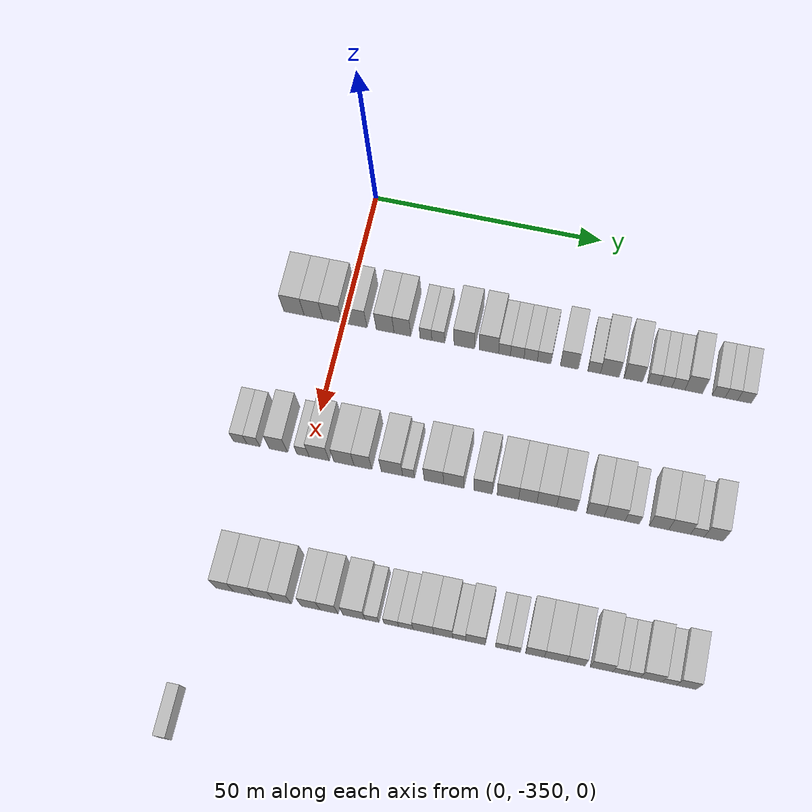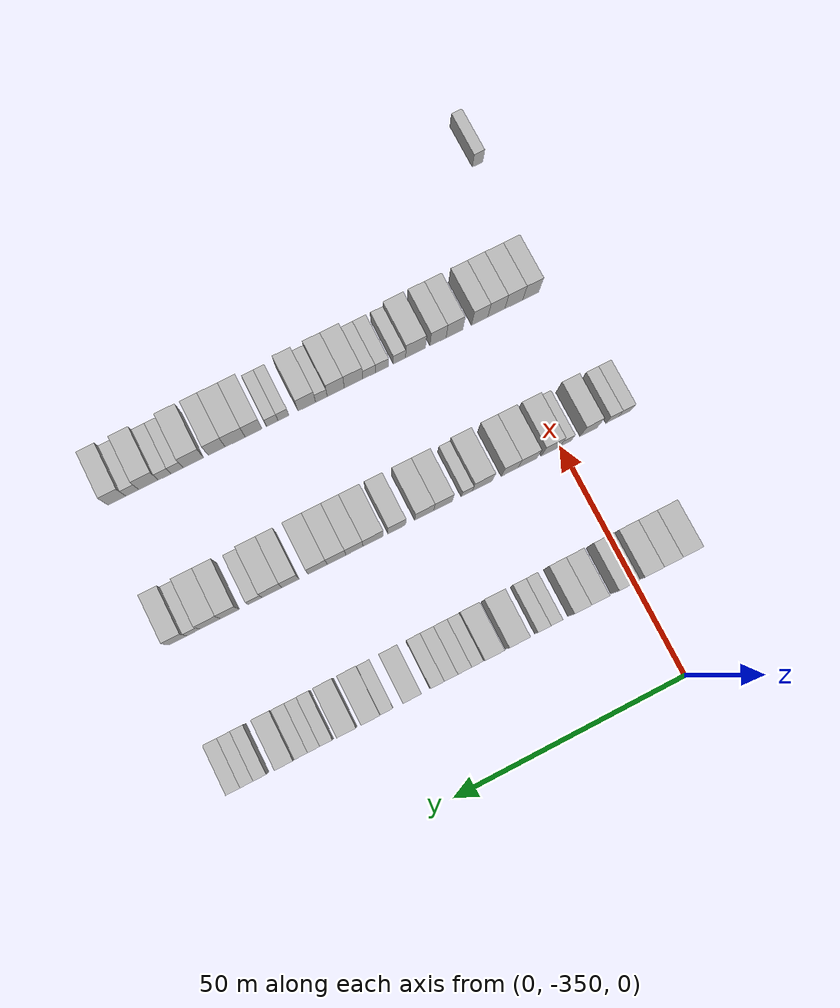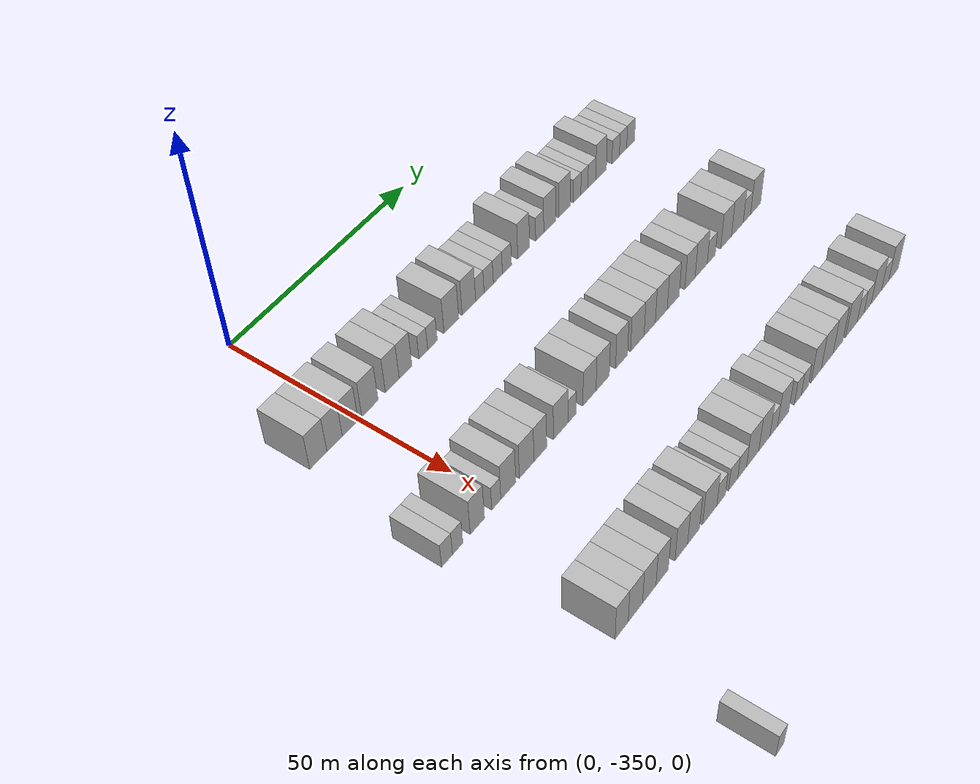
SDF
<sdf version="1.6">
 <world name="default">
  <model name="building_28">
   <static>1</static>
   <pose>25.0000 -360.7338 0 0.000000 0.000000 0.000000</pose>
   <link name="link">
    <pose>0 0 4.50 0 0 0</pose>
    <collision name="collision"><geometry><box><size>10.0000 4.4301 9.0000</size></box></geometry></collision>
    <visual name="visual">
     <cast_shadows>0</cast_shadows>
     <geometry><box><size>10.0000 4.4301 9.0000</size></box></geometry>
     <material>
      <script>
       <uri>model://HANNAS_wall/materials/scripts</uri>
       <uri>model://HANNAS_wall/materials/textures</uri>
       <name>vrc/HANNAS_wall</name>
      </script>
     </material>
    </visual>
   </link>
  </model>
  <model name="building_29">
   <static>1</static>
   <pose>25.0000 -356.4991 0 0.000000 0.000000 0.000000</pose>
   <link name="link">
    <pose>0 0 4.50 0 0 0</pose>
    <collision name="collision"><geometry><box><size>10.0000 4.0392 9.0000</size></box></geometry></collision>
    <visual name="visual">
     <cast_shadows>0</cast_shadows>
     <geometry><box><size>10.0000 4.0392 9.0000</size></box></geometry>
     <material>
      <script>
       <uri>model://HANNAS_wall/materials/scripts</uri>
       <uri>model://HANNAS_wall/materials/textures</uri>
       <name>vrc/HANNAS_wall</name>
      </script>
     </material>
    </visual>
   </link>
  </model>
  <model name="building_30">
   <static>1</static>
   <pose>25.0000 -352.3831 0 0.000000 0.000000 0.000000</pose>
   <link name="link">
    <pose>0 0 4.50 0 0 0</pose>
    <collision name="collision"><geometry><box><size>10.0000 4.1927 9.0000</size></box></geometry></collision>
    <visual name="visual">
     <cast_shadows>0</cast_shadows>
     <geometry><box><size>10.0000 4.1927 9.0000</size></box></geometry>
     <material>
      <script>
       <uri>model://HANNAS_wall/materials/scripts</uri>
       <uri>model://HANNAS_wall/materials/textures</uri>
       <name>vrc/HANNAS_wall</name>
      </script>
     </material>
    </visual>
   </link>
  </model>
  <model name="building_31">
   <static>1</static>
   <pose>25.0000 -347.0619 0 0.000000 0.000000 0.000000</pose>
   <link name="link">
    <pose>0 0 4.50 0 0 0</pose>
    <collision name="collision"><geometry><box><size>10.0000 4.4497 9.0000</size></box></geometry></collision>
    <visual name="visual">
     <cast_shadows>0</cast_shadows>
     <geometry><box><size>10.0000 4.4497 9.0000</size></box></geometry>
     <material>
      <script>
       <uri>model://HANNAS_wall/materials/scripts</uri>
       <uri>model://HANNAS_wall/materials/textures</uri>
       <name>vrc/HANNAS_wall</name>
      </script>
     </material>
    </visual>
   </link>
  </model>
  <model name="building_32">
   <static>1</static>
   <pose>25.0000 -340.9144 0 0.000000 0.000000 0.000000</pose>
   <link name="link">
    <pose>0 0 4.50 0 0 0</pose>
    <collision name="collision"><geometry><box><size>10.0000 3.8452 9.0000</size></box></geometry></collision>
    <visual name="visual">
     <cast_shadows>0</cast_shadows>
     <geometry><box><size>10.0000 3.8452 9.0000</size></box></geometry>
     <material>
      <script>
       <uri>model://HANNAS_wall/materials/scripts</uri>
       <uri>model://HANNAS_wall/materials/textures</uri>
       <name>vrc/HANNAS_wall</name>
      </script>
     </material>
    </visual>
   </link>
  </model>
  <model name="building_33">
   <static>1</static>
   <pose>25.0000 -337.1807 0 0.000000 0.000000 0.000000</pose>
   <link name="link">
    <pose>0 0 4.50 0 0 0</pose>
    <collision name="collision"><geometry><box><size>10.0000 3.6222 9.0000</size></box></geometry></collision>
    <visual name="visual">
     <cast_shadows>0</cast_shadows>
     <geometry><box><size>10.0000 3.6222 9.0000</size></box></geometry>
     <material>
      <script>
       <uri>model://HANNAS_wall/materials/scripts</uri>
       <uri>model://HANNAS_wall/materials/textures</uri>
       <name>vrc/HANNAS_wall</name>
      </script>
     </material>
    </visual>
   </link>
  </model>
  <model name="building_34">
   <static>1</static>
   <pose>25.0000 -332.1094 0 0.000000 0.000000 0.000000</pose>
   <link name="link">
    <pose>0 0 3.00 0 0 0</pose>
    <collision name="collision"><geometry><box><size>10.0000 2.5204 6.0000</size></box></geometry></collision>
    <visual name="visual">
     <cast_shadows>0</cast_shadows>
     <geometry><box><size>10.0000 2.5204 6.0000</size></box></geometry>
     <material>
      <script>
       <uri>model://HANNAS_wall/materials/scripts</uri>
       <uri>model://HANNAS_wall/materials/textures</uri>
       <name>vrc/HANNAS_wall</name>
      </script>
     </material>
    </visual>
   </link>
  </model>
  <model name="building_35">
   <static>1</static>
   <pose>25.0000 -329.4571 0 0.000000 0.000000 0.000000</pose>
   <link name="link">
    <pose>0 0 3.00 0 0 0</pose>
    <collision name="collision"><geometry><box><size>10.0000 2.7842 6.0000</size></box></geometry></collision>
    <visual name="visual">
     <cast_shadows>0</cast_shadows>
     <geometry><box><size>10.0000 2.7842 6.0000</size></box></geometry>
     <material>
      <script>
       <uri>model://HANNAS_wall/materials/scripts</uri>
       <uri>model://HANNAS_wall/materials/textures</uri>
       <name>vrc/HANNAS_wall</name>
      </script>
     </material>
    </visual>
   </link>
  </model>
  <model name="building_36">
   <static>1</static>
   <pose>25.0000 -323.8593 0 0.000000 0.000000 0.000000</pose>
   <link name="link">
    <pose>0 0 4.50 0 0 0</pose>
    <collision name="collision"><geometry><box><size>10.0000 4.4113 9.0000</size></box></geometry></collision>
    <visual name="visual">
     <cast_shadows>0</cast_shadows>
     <geometry><box><size>10.0000 4.4113 9.0000</size></box></geometry>
     <material>
      <script>
       <uri>model://HANNAS_wall/materials/scripts</uri>
       <uri>model://HANNAS_wall/materials/textures</uri>
       <name>vrc/HANNAS_wall</name>
      </script>
     </material>
    </visual>
   </link>
  </model>
  <model name="building_37">
   <static>1</static>
   <pose>25.0000 -318.5925 0 0.000000 0.000000 0.000000</pose>
   <link name="link">
    <pose>0 0 4.50 0 0 0</pose>
    <collision name="collision"><geometry><box><size>10.0000 4.1224 9.0000</size></box></geometry></collision>
    <visual name="visual">
     <cast_shadows>0</cast_shadows>
     <geometry><box><size>10.0000 4.1224 9.0000</size></box></geometry>
     <material>
      <script>
       <uri>model://HANNAS_wall/materials/scripts</uri>
       <uri>model://HANNAS_wall/materials/textures</uri>
       <name>vrc/HANNAS_wall</name>
      </script>
     </material>
    </visual>
   </link>
  </model>
  <model name="building_38">
   <static>1</static>
   <pose>25.0000 -315.2569 0 0.000000 0.000000 0.000000</pose>
   <link name="link">
    <pose>0 0 3.00 0 0 0</pose>
    <collision name="collision"><geometry><box><size>10.0000 2.5487 6.0000</size></box></geometry></collision>
    <visual name="visual">
     <cast_shadows>0</cast_shadows>
     <geometry><box><size>10.0000 2.5487 6.0000</size></box></geometry>
     <material>
      <script>
       <uri>model://HANNAS_wall/materials/scripts</uri>
       <uri>model://HANNAS_wall/materials/textures</uri>
       <name>vrc/HANNAS_wall</name>
      </script>
     </material>
    </visual>
   </link>
  </model>
  <model name="building_39">
   <static>1</static>
   <pose>25.0000 -312.5360 0 0.000000 0.000000 0.000000</pose>
   <link name="link">
    <pose>0 0 3.00 0 0 0</pose>
    <collision name="collision"><geometry><box><size>10.0000 2.8932 6.0000</size></box></geometry></collision>
    <visual name="visual">
     <cast_shadows>0</cast_shadows>
     <geometry><box><size>10.0000 2.8932 6.0000</size></box></geometry>
     <material>
      <script>
       <uri>model://HANNAS_wall/materials/scripts</uri>
       <uri>model://HANNAS_wall/materials/textures</uri>
       <name>vrc/HANNAS_wall</name>
      </script>
     </material>
    </visual>
   </link>
  </model>
  <model name="building_40">
   <static>1</static>
   <pose>25.0000 -309.6625 0 0.000000 0.000000 0.000000</pose>
   <link name="link">
    <pose>0 0 3.00 0 0 0</pose>
    <collision name="collision"><geometry><box><size>10.0000 2.8539 6.0000</size></box></geometry></collision>
    <visual name="visual">
     <cast_shadows>0</cast_shadows>
     <geometry><box><size>10.0000 2.8539 6.0000</size></box></geometry>
     <material>
      <script>
       <uri>model://HANNAS_wall/materials/scripts</uri>
       <uri>model://HANNAS_wall/materials/textures</uri>
       <name>vrc/HANNAS_wall</name>
      </script>
     </material>
    </visual>
   </link>
  </model>
  <model name="building_41">
   <static>1</static>
   <pose>25.0000 -306.7926 0 0.000000 0.000000 0.000000</pose>
   <link name="link">
    <pose>0 0 3.00 0 0 0</pose>
    <collision name="collision"><geometry><box><size>10.0000 2.8858 6.0000</size></box></geometry></collision>
    <visual name="visual">
     <cast_shadows>0</cast_shadows>
     <geometry><box><size>10.0000 2.8858 6.0000</size></box></geometry>
     <material>
      <script>
       <uri>model://HANNAS_wall/materials/scripts</uri>
       <uri>model://HANNAS_wall/materials/textures</uri>
       <name>vrc/HANNAS_wall</name>
      </script>
     </material>
    </visual>
   </link>
  </model>
  <model name="building_42">
   <static>1</static>
   <pose>25.0000 -301.4364 0 0.000000 0.000000 0.000000</pose>
   <link name="link">
    <pose>0 0 4.50 0 0 0</pose>
    <collision name="collision"><geometry><box><size>10.0000 3.8266 9.0000</size></box></geometry></collision>
    <visual name="visual">
     <cast_shadows>0</cast_shadows>
     <geometry><box><size>10.0000 3.8266 9.0000</size></box></geometry>
     <material>
      <script>
       <uri>model://HANNAS_wall/materials/scripts</uri>
       <uri>model://HANNAS_wall/materials/textures</uri>
       <name>vrc/HANNAS_wall</name>
      </script>
     </material>
    </visual>
   </link>
  </model>
  <model name="building_43">
   <static>1</static>
   <pose>25.0000 -296.1851 0 0.000000 0.000000 0.000000</pose>
   <link name="link">
    <pose>0 0 3.00 0 0 0</pose>
    <collision name="collision"><geometry><box><size>10.0000 2.6761 6.0000</size></box></geometry></collision>
    <visual name="visual">
     <cast_shadows>0</cast_shadows>
     <geometry><box><size>10.0000 2.6761 6.0000</size></box></geometry>
     <material>
      <script>
       <uri>model://HANNAS_wall/materials/scripts</uri>
       <uri>model://HANNAS_wall/materials/textures</uri>
       <name>vrc/HANNAS_wall</name>
      </script>
     </material>
    </visual>
   </link>
  </model>
  <model name="building_44">
   <static>1</static>
   <pose>25.0000 -292.8613 0 0.000000 0.000000 0.000000</pose>
   <link name="link">
    <pose>0 0 4.50 0 0 0</pose>
    <collision name="collision"><geometry><box><size>10.0000 3.9715 9.0000</size></box></geometry></collision>
    <visual name="visual">
     <cast_shadows>0</cast_shadows>
     <geometry><box><size>10.0000 3.9715 9.0000</size></box></geometry>
     <material>
      <script>
       <uri>model://HANNAS_wall/materials/scripts</uri>
       <uri>model://HANNAS_wall/materials/textures</uri>
       <name>vrc/HANNAS_wall</name>
      </script>
     </material>
    </visual>
   </link>
  </model>
  <model name="building_45">
   <static>1</static>
   <pose>25.0000 -287.8928 0 0.000000 0.000000 0.000000</pose>
   <link name="link">
    <pose>0 0 4.50 0 0 0</pose>
    <collision name="collision"><geometry><box><size>10.0000 3.9654 9.0000</size></box></geometry></collision>
    <visual name="visual">
     <cast_shadows>0</cast_shadows>
     <geometry><box><size>10.0000 3.9654 9.0000</size></box></geometry>
     <material>
      <script>
       <uri>model://HANNAS_wall/materials/scripts</uri>
       <uri>model://HANNAS_wall/materials/textures</uri>
       <name>vrc/HANNAS_wall</name>
      </script>
     </material>
    </visual>
   </link>
  </model>
  <model name="building_46">
   <static>1</static>
   <pose>25.0000 -283.6067 0 0.000000 0.000000 0.000000</pose>
   <link name="link">
    <pose>0 0 3.00 0 0 0</pose>
    <collision name="collision"><geometry><box><size>10.0000 2.6069 6.0000</size></box></geometry></collision>
    <visual name="visual">
     <cast_shadows>0</cast_shadows>
     <geometry><box><size>10.0000 2.6069 6.0000</size></box></geometry>
     <material>
      <script>
       <uri>model://HANNAS_wall/materials/scripts</uri>
       <uri>model://HANNAS_wall/materials/textures</uri>
       <name>vrc/HANNAS_wall</name>
      </script>
     </material>
    </visual>
   </link>
  </model>
  <model name="building_47">
   <static>1</static>
   <pose>25.0000 -281.0584 0 0.000000 0.000000 0.000000</pose>
   <link name="link">
    <pose>0 0 3.00 0 0 0</pose>
    <collision name="collision"><geometry><box><size>10.0000 2.4897 6.0000</size></box></geometry></collision>
    <visual name="visual">
     <cast_shadows>0</cast_shadows>
     <geometry><box><size>10.0000 2.4897 6.0000</size></box></geometry>
     <material>
      <script>
       <uri>model://HANNAS_wall/materials/scripts</uri>
       <uri>model://HANNAS_wall/materials/textures</uri>
       <name>vrc/HANNAS_wall</name>
      </script>
     </material>
    </visual>
   </link>
  </model>
  <model name="building_48">
   <static>1</static>
   <pose>25.0000 -278.4363 0 0.000000 0.000000 0.000000</pose>
   <link name="link">
    <pose>0 0 3.00 0 0 0</pose>
    <collision name="collision"><geometry><box><size>10.0000 2.7546 6.0000</size></box></geometry></collision>
    <visual name="visual">
     <cast_shadows>0</cast_shadows>
     <geometry><box><size>10.0000 2.7546 6.0000</size></box></geometry>
     <material>
      <script>
       <uri>model://HANNAS_wall/materials/scripts</uri>
       <uri>model://HANNAS_wall/materials/textures</uri>
       <name>vrc/HANNAS_wall</name>
      </script>
     </material>
    </visual>
   </link>
  </model>
  <model name="building_49">
   <static>1</static>
   <pose>25.0000 -275.1839 0 0.000000 0.000000 0.000000</pose>
   <link name="link">
    <pose>0 0 4.50 0 0 0</pose>
    <collision name="collision"><geometry><box><size>10.0000 3.7501 9.0000</size></box></geometry></collision>
    <visual name="visual">
     <cast_shadows>0</cast_shadows>
     <geometry><box><size>10.0000 3.7501 9.0000</size></box></geometry>
     <material>
      <script>
       <uri>model://HANNAS_wall/materials/scripts</uri>
       <uri>model://HANNAS_wall/materials/textures</uri>
       <name>vrc/HANNAS_wall</name>
      </script>
     </material>
    </visual>
   </link>
  </model>
  <model name="building_50">
   <static>1</static>
   <pose>25.0000 -269.9747 0 0.000000 0.000000 0.000000</pose>
   <link name="link">
    <pose>0 0 3.00 0 0 0</pose>
    <collision name="collision"><geometry><box><size>10.0000 2.6684 6.0000</size></box></geometry></collision>
    <visual name="visual">
     <cast_shadows>0</cast_shadows>
     <geometry><box><size>10.0000 2.6684 6.0000</size></box></geometry>
     <material>
      <script>
       <uri>model://HANNAS_wall/materials/scripts</uri>
       <uri>model://HANNAS_wall/materials/textures</uri>
       <name>vrc/HANNAS_wall</name>
      </script>
     </material>
    </visual>
   </link>
  </model>
  <model name="building_51">
   <static>1</static>
   <pose>25.0000 -267.3069 0 0.000000 0.000000 0.000000</pose>
   <link name="link">
    <pose>0 0 3.00 0 0 0</pose>
    <collision name="collision"><geometry><box><size>10.0000 2.6672 6.0000</size></box></geometry></collision>
    <visual name="visual">
     <cast_shadows>0</cast_shadows>
     <geometry><box><size>10.0000 2.6672 6.0000</size></box></geometry>
     <material>
      <script>
       <uri>model://HANNAS_wall/materials/scripts</uri>
       <uri>model://HANNAS_wall/materials/textures</uri>
       <name>vrc/HANNAS_wall</name>
      </script>
     </material>
    </visual>
   </link>
  </model>
  <model name="building_52">
   <static>1</static>
   <pose>25.0000 -264.5204 0 0.000000 0.000000 0.000000</pose>
   <link name="link">
    <pose>0 0 3.00 0 0 0</pose>
    <collision name="collision"><geometry><box><size>10.0000 2.9056 6.0000</size></box></geometry></collision>
    <visual name="visual">
     <cast_shadows>0</cast_shadows>
     <geometry><box><size>10.0000 2.9056 6.0000</size></box></geometry>
     <material>
      <script>
       <uri>model://HANNAS_wall/materials/scripts</uri>
       <uri>model://HANNAS_wall/materials/textures</uri>
       <name>vrc/HANNAS_wall</name>
      </script>
     </material>
    </visual>
   </link>
  </model>
  <model name="building_251">
   <static>1</static>
   <pose>55.0000 -364.4358 0 0.000000 0.000000 0.000000</pose>
   <link name="link">
    <pose>0 0 3.00 0 0 0</pose>
    <collision name="collision"><geometry><box><size>10.0000 2.8425 6.0000</size></box></geometry></collision>
    <visual name="visual">
     <cast_shadows>0</cast_shadows>
     <geometry><box><size>10.0000 2.8425 6.0000</size></box></geometry>
     <material>
      <script>
       <uri>model://HANNAS_wall/materials/scripts</uri>
       <uri>model://HANNAS_wall/materials/textures</uri>
       <name>vrc/HANNAS_wall</name>
      </script>
     </material>
    </visual>
   </link>
  </model>
  <model name="building_252">
   <static>1</static>
   <pose>55.0000 -361.6436 0 0.000000 0.000000 0.000000</pose>
   <link name="link">
    <pose>0 0 3.00 0 0 0</pose>
    <collision name="collision"><geometry><box><size>10.0000 2.7420 6.0000</size></box></geometry></collision>
    <visual name="visual">
     <cast_shadows>0</cast_shadows>
     <geometry><box><size>10.0000 2.7420 6.0000</size></box></geometry>
     <material>
      <script>
       <uri>model://HANNAS_wall/materials/scripts</uri>
       <uri>model://HANNAS_wall/materials/textures</uri>
       <name>vrc/HANNAS_wall</name>
      </script>
     </material>
    </visual>
   </link>
  </model>
  <model name="building_253">
   <static>1</static>
   <pose>55.0000 -356.3420 0 0.000000 0.000000 0.000000</pose>
   <link name="link">
    <pose>0 0 4.50 0 0 0</pose>
    <collision name="collision"><geometry><box><size>10.0000 3.8612 9.0000</size></box></geometry></collision>
    <visual name="visual">
     <cast_shadows>0</cast_shadows>
     <geometry><box><size>10.0000 3.8612 9.0000</size></box></geometry>
     <material>
      <script>
       <uri>model://HANNAS_wall/materials/scripts</uri>
       <uri>model://HANNAS_wall/materials/textures</uri>
       <name>vrc/HANNAS_wall</name>
      </script>
     </material>
    </visual>
   </link>
  </model>
  <model name="building_254">
   <static>1</static>
   <pose>55.0000 -351.1498 0 0.000000 0.000000 0.000000</pose>
   <link name="link">
    <pose>0 0 3.00 0 0 0</pose>
    <collision name="collision"><geometry><box><size>10.0000 2.5231 6.0000</size></box></geometry></collision>
    <visual name="visual">
     <cast_shadows>0</cast_shadows>
     <geometry><box><size>10.0000 2.5231 6.0000</size></box></geometry>
     <material>
      <script>
       <uri>model://HANNAS_wall/materials/scripts</uri>
       <uri>model://HANNAS_wall/materials/textures</uri>
       <name>vrc/HANNAS_wall</name>
      </script>
     </material>
    </visual>
   </link>
  </model>
  <model name="building_255">
   <static>1</static>
   <pose>55.0000 -347.7748 0 0.000000 0.000000 0.000000</pose>
   <link name="link">
    <pose>0 0 4.50 0 0 0</pose>
    <collision name="collision"><geometry><box><size>10.0000 4.2271 9.0000</size></box></geometry></collision>
    <visual name="visual">
     <cast_shadows>0</cast_shadows>
     <geometry><box><size>10.0000 4.2271 9.0000</size></box></geometry>
     <material>
      <script>
       <uri>model://HANNAS_wall/materials/scripts</uri>
       <uri>model://HANNAS_wall/materials/textures</uri>
       <name>vrc/HANNAS_wall</name>
      </script>
     </material>
    </visual>
   </link>
  </model>
  <model name="building_256">
   <static>1</static>
   <pose>55.0000 -342.5516 0 0.000000 0.000000 0.000000</pose>
   <link name="link">
    <pose>0 0 4.50 0 0 0</pose>
    <collision name="collision"><geometry><box><size>10.0000 4.2193 9.0000</size></box></geometry></collision>
    <visual name="visual">
     <cast_shadows>0</cast_shadows>
     <geometry><box><size>10.0000 4.2193 9.0000</size></box></geometry>
     <material>
      <script>
       <uri>model://HANNAS_wall/materials/scripts</uri>
       <uri>model://HANNAS_wall/materials/textures</uri>
       <name>vrc/HANNAS_wall</name>
      </script>
     </material>
    </visual>
   </link>
  </model>
  <model name="building_257">
   <static>1</static>
   <pose>55.0000 -338.5898 0 0.000000 0.000000 0.000000</pose>
   <link name="link">
    <pose>0 0 4.50 0 0 0</pose>
    <collision name="collision"><geometry><box><size>10.0000 3.7042 9.0000</size></box></geometry></collision>
    <visual name="visual">
     <cast_shadows>0</cast_shadows>
     <geometry><box><size>10.0000 3.7042 9.0000</size></box></geometry>
     <material>
      <script>
       <uri>model://HANNAS_wall/materials/scripts</uri>
       <uri>model://HANNAS_wall/materials/textures</uri>
       <name>vrc/HANNAS_wall</name>
      </script>
     </material>
    </visual>
   </link>
  </model>
  <model name="building_258">
   <static>1</static>
   <pose>55.0000 -332.5124 0 0.000000 0.000000 0.000000</pose>
   <link name="link">
    <pose>0 0 4.50 0 0 0</pose>
    <collision name="collision"><geometry><box><size>10.0000 4.4506 9.0000</size></box></geometry></collision>
    <visual name="visual">
     <cast_shadows>0</cast_shadows>
     <geometry><box><size>10.0000 4.4506 9.0000</size></box></geometry>
     <material>
      <script>
       <uri>model://HANNAS_wall/materials/scripts</uri>
       <uri>model://HANNAS_wall/materials/textures</uri>
       <name>vrc/HANNAS_wall</name>
      </script>
     </material>
    </visual>
   </link>
  </model>
  <model name="building_259">
   <static>1</static>
   <pose>55.0000 -329.0554 0 0.000000 0.000000 0.000000</pose>
   <link name="link">
    <pose>0 0 3.00 0 0 0</pose>
    <collision name="collision"><geometry><box><size>10.0000 2.4633 6.0000</size></box></geometry></collision>
    <visual name="visual">
     <cast_shadows>0</cast_shadows>
     <geometry><box><size>10.0000 2.4633 6.0000</size></box></geometry>
     <material>
      <script>
       <uri>model://HANNAS_wall/materials/scripts</uri>
       <uri>model://HANNAS_wall/materials/textures</uri>
       <name>vrc/HANNAS_wall</name>
      </script>
     </material>
    </visual>
   </link>
  </model>
  <model name="building_260">
   <static>1</static>
   <pose>55.0000 -323.7890 0 0.000000 0.000000 0.000000</pose>
   <link name="link">
    <pose>0 0 4.50 0 0 0</pose>
    <collision name="collision"><geometry><box><size>10.0000 4.0696 9.0000</size></box></geometry></collision>
    <visual name="visual">
     <cast_shadows>0</cast_shadows>
     <geometry><box><size>10.0000 4.0696 9.0000</size></box></geometry>
     <material>
      <script>
       <uri>model://HANNAS_wall/materials/scripts</uri>
       <uri>model://HANNAS_wall/materials/textures</uri>
       <name>vrc/HANNAS_wall</name>
      </script>
     </material>
    </visual>
   </link>
  </model>
  <model name="building_261">
   <static>1</static>
   <pose>55.0000 -319.6598 0 0.000000 0.000000 0.000000</pose>
   <link name="link">
    <pose>0 0 4.50 0 0 0</pose>
    <collision name="collision"><geometry><box><size>10.0000 4.1888 9.0000</size></box></geometry></collision>
    <visual name="visual">
     <cast_shadows>0</cast_shadows>
     <geometry><box><size>10.0000 4.1888 9.0000</size></box></geometry>
     <material>
      <script>
       <uri>model://HANNAS_wall/materials/scripts</uri>
       <uri>model://HANNAS_wall/materials/textures</uri>
       <name>vrc/HANNAS_wall</name>
      </script>
     </material>
    </visual>
   </link>
  </model>
  <model name="building_262">
   <static>1</static>
   <pose>55.0000 -313.6399 0 0.000000 0.000000 0.000000</pose>
   <link name="link">
    <pose>0 0 4.50 0 0 0</pose>
    <collision name="collision"><geometry><box><size>10.0000 3.8511 9.0000</size></box></geometry></collision>
    <visual name="visual">
     <cast_shadows>0</cast_shadows>
     <geometry><box><size>10.0000 3.8511 9.0000</size></box></geometry>
     <material>
      <script>
       <uri>model://HANNAS_wall/materials/scripts</uri>
       <uri>model://HANNAS_wall/materials/textures</uri>
       <name>vrc/HANNAS_wall</name>
      </script>
     </material>
    </visual>
   </link>
  </model>
  <model name="building_263">
   <static>1</static>
   <pose>55.0000 -308.4984 0 0.000000 0.000000 0.000000</pose>
   <link name="link">
    <pose>0 0 4.50 0 0 0</pose>
    <collision name="collision"><geometry><box><size>10.0000 4.4319 9.0000</size></box></geometry></collision>
    <visual name="visual">
     <cast_shadows>0</cast_shadows>
     <geometry><box><size>10.0000 4.4319 9.0000</size></box></geometry>
     <material>
      <script>
       <uri>model://HANNAS_wall/materials/scripts</uri>
       <uri>model://HANNAS_wall/materials/textures</uri>
       <name>vrc/HANNAS_wall</name>
      </script>
     </material>
    </visual>
   </link>
  </model>
  <model name="building_264">
   <static>1</static>
   <pose>55.0000 -304.4059 0 0.000000 0.000000 0.000000</pose>
   <link name="link">
    <pose>0 0 4.50 0 0 0</pose>
    <collision name="collision"><geometry><box><size>10.0000 3.7531 9.0000</size></box></geometry></collision>
    <visual name="visual">
     <cast_shadows>0</cast_shadows>
     <geometry><box><size>10.0000 3.7531 9.0000</size></box></geometry>
     <material>
      <script>
       <uri>model://HANNAS_wall/materials/scripts</uri>
       <uri>model://HANNAS_wall/materials/textures</uri>
       <name>vrc/HANNAS_wall</name>
      </script>
     </material>
    </visual>
   </link>
  </model>
  <model name="building_265">
   <static>1</static>
   <pose>55.0000 -300.5072 0 0.000000 0.000000 0.000000</pose>
   <link name="link">
    <pose>0 0 4.50 0 0 0</pose>
    <collision name="collision"><geometry><box><size>10.0000 4.0442 9.0000</size></box></geometry></collision>
    <visual name="visual">
     <cast_shadows>0</cast_shadows>
     <geometry><box><size>10.0000 4.0442 9.0000</size></box></geometry>
     <material>
      <script>
       <uri>model://HANNAS_wall/materials/scripts</uri>
       <uri>model://HANNAS_wall/materials/textures</uri>
       <name>vrc/HANNAS_wall</name>
      </script>
     </material>
    </visual>
   </link>
  </model>
  <model name="building_266">
   <static>1</static>
   <pose>55.0000 -296.4264 0 0.000000 0.000000 0.000000</pose>
   <link name="link">
    <pose>0 0 4.50 0 0 0</pose>
    <collision name="collision"><geometry><box><size>10.0000 4.1173 9.0000</size></box></geometry></collision>
    <visual name="visual">
     <cast_shadows>0</cast_shadows>
     <geometry><box><size>10.0000 4.1173 9.0000</size></box></geometry>
     <material>
      <script>
       <uri>model://HANNAS_wall/materials/scripts</uri>
       <uri>model://HANNAS_wall/materials/textures</uri>
       <name>vrc/HANNAS_wall</name>
      </script>
     </material>
    </visual>
   </link>
  </model>
  <model name="building_267">
   <static>1</static>
   <pose>55.0000 -290.5620 0 0.000000 0.000000 0.000000</pose>
   <link name="link">
    <pose>0 0 4.50 0 0 0</pose>
    <collision name="collision"><geometry><box><size>10.0000 3.6116 9.0000</size></box></geometry></collision>
    <visual name="visual">
     <cast_shadows>0</cast_shadows>
     <geometry><box><size>10.0000 3.6116 9.0000</size></box></geometry>
     <material>
      <script>
       <uri>model://HANNAS_wall/materials/scripts</uri>
       <uri>model://HANNAS_wall/materials/textures</uri>
       <name>vrc/HANNAS_wall</name>
      </script>
     </material>
    </visual>
   </link>
  </model>
  <model name="building_268">
   <static>1</static>
   <pose>55.0000 -286.6136 0 0.000000 0.000000 0.000000</pose>
   <link name="link">
    <pose>0 0 4.50 0 0 0</pose>
    <collision name="collision"><geometry><box><size>10.0000 4.2850 9.0000</size></box></geometry></collision>
    <visual name="visual">
     <cast_shadows>0</cast_shadows>
     <geometry><box><size>10.0000 4.2850 9.0000</size></box></geometry>
     <material>
      <script>
       <uri>model://HANNAS_wall/materials/scripts</uri>
       <uri>model://HANNAS_wall/materials/textures</uri>
       <name>vrc/HANNAS_wall</name>
      </script>
     </material>
    </visual>
   </link>
  </model>
  <model name="building_269">
   <static>1</static>
   <pose>55.0000 -282.9977 0 0.000000 0.000000 0.000000</pose>
   <link name="link">
    <pose>0 0 3.00 0 0 0</pose>
    <collision name="collision"><geometry><box><size>10.0000 2.9468 6.0000</size></box></geometry></collision>
    <visual name="visual">
     <cast_shadows>0</cast_shadows>
     <geometry><box><size>10.0000 2.9468 6.0000</size></box></geometry>
     <material>
      <script>
       <uri>model://HANNAS_wall/materials/scripts</uri>
       <uri>model://HANNAS_wall/materials/textures</uri>
       <name>vrc/HANNAS_wall</name>
      </script>
     </material>
    </visual>
   </link>
  </model>
  <model name="building_270">
   <static>1</static>
   <pose>55.0000 -277.5606 0 0.000000 0.000000 0.000000</pose>
   <link name="link">
    <pose>0 0 4.50 0 0 0</pose>
    <collision name="collision"><geometry><box><size>10.0000 3.9274 9.0000</size></box></geometry></collision>
    <visual name="visual">
     <cast_shadows>0</cast_shadows>
     <geometry><box><size>10.0000 3.9274 9.0000</size></box></geometry>
     <material>
      <script>
       <uri>model://HANNAS_wall/materials/scripts</uri>
       <uri>model://HANNAS_wall/materials/textures</uri>
       <name>vrc/HANNAS_wall</name>
      </script>
     </material>
    </visual>
   </link>
  </model>
  <model name="building_271">
   <static>1</static>
   <pose>55.0000 -273.3845 0 0.000000 0.000000 0.000000</pose>
   <link name="link">
    <pose>0 0 4.50 0 0 0</pose>
    <collision name="collision"><geometry><box><size>10.0000 4.4247 9.0000</size></box></geometry></collision>
    <visual name="visual">
     <cast_shadows>0</cast_shadows>
     <geometry><box><size>10.0000 4.4247 9.0000</size></box></geometry>
     <material>
      <script>
       <uri>model://HANNAS_wall/materials/scripts</uri>
       <uri>model://HANNAS_wall/materials/textures</uri>
       <name>vrc/HANNAS_wall</name>
      </script>
     </material>
    </visual>
   </link>
  </model>
  <model name="building_272">
   <static>1</static>
   <pose>55.0000 -269.7764 0 0.000000 0.000000 0.000000</pose>
   <link name="link">
    <pose>0 0 3.00 0 0 0</pose>
    <collision name="collision"><geometry><box><size>10.0000 2.7915 6.0000</size></box></geometry></collision>
    <visual name="visual">
     <cast_shadows>0</cast_shadows>
     <geometry><box><size>10.0000 2.7915 6.0000</size></box></geometry>
     <material>
      <script>
       <uri>model://HANNAS_wall/materials/scripts</uri>
       <uri>model://HANNAS_wall/materials/textures</uri>
       <name>vrc/HANNAS_wall</name>
      </script>
     </material>
    </visual>
   </link>
  </model>
  <model name="building_273">
   <static>1</static>
   <pose>55.0000 -266.4543 0 0.000000 0.000000 0.000000</pose>
   <link name="link">
    <pose>0 0 4.50 0 0 0</pose>
    <collision name="collision"><geometry><box><size>10.0000 3.8529 9.0000</size></box></geometry></collision>
    <visual name="visual">
     <cast_shadows>0</cast_shadows>
     <geometry><box><size>10.0000 3.8529 9.0000</size></box></geometry>
     <material>
      <script>
       <uri>model://HANNAS_wall/materials/scripts</uri>
       <uri>model://HANNAS_wall/materials/textures</uri>
       <name>vrc/HANNAS_wall</name>
      </script>
     </material>
    </visual>
   </link>
  </model>
  <model name="building_473">
   <static>1</static>
   <pose>85.0000 -359.4197 0 0.000000 0.000000 0.000000</pose>
   <link name="link">
    <pose>0 0 4.50 0 0 0</pose>
    <collision name="collision"><geometry><box><size>10.0000 3.6838 9.0000</size></box></geometry></collision>
    <visual name="visual">
     <cast_shadows>0</cast_shadows>
     <geometry><box><size>10.0000 3.6838 9.0000</size></box></geometry>
     <material>
      <script>
       <uri>model://HANNAS_wall/materials/scripts</uri>
       <uri>model://HANNAS_wall/materials/textures</uri>
       <name>vrc/HANNAS_wall</name>
      </script>
     </material>
    </visual>
   </link>
  </model>
  <model name="building_474">
   <static>1</static>
   <pose>85.0000 -355.5279 0 0.000000 0.000000 0.000000</pose>
   <link name="link">
    <pose>0 0 4.50 0 0 0</pose>
    <collision name="collision"><geometry><box><size>10.0000 4.0999 9.0000</size></box></geometry></collision>
    <visual name="visual">
     <cast_shadows>0</cast_shadows>
     <geometry><box><size>10.0000 4.0999 9.0000</size></box></geometry>
     <material>
      <script>
       <uri>model://HANNAS_wall/materials/scripts</uri>
       <uri>model://HANNAS_wall/materials/textures</uri>
       <name>vrc/HANNAS_wall</name>
      </script>
     </material>
    </visual>
   </link>
  </model>
  <model name="building_475">
   <static>1</static>
   <pose>85.0000 -351.5333 0 0.000000 0.000000 0.000000</pose>
   <link name="link">
    <pose>0 0 4.50 0 0 0</pose>
    <collision name="collision"><geometry><box><size>10.0000 3.8892 9.0000</size></box></geometry></collision>
    <visual name="visual">
     <cast_shadows>0</cast_shadows>
     <geometry><box><size>10.0000 3.8892 9.0000</size></box></geometry>
     <material>
      <script>
       <uri>model://HANNAS_wall/materials/scripts</uri>
       <uri>model://HANNAS_wall/materials/textures</uri>
       <name>vrc/HANNAS_wall</name>
      </script>
     </material>
    </visual>
   </link>
  </model>
  <model name="building_476">
   <static>1</static>
   <pose>85.0000 -347.7467 0 0.000000 0.000000 0.000000</pose>
   <link name="link">
    <pose>0 0 4.50 0 0 0</pose>
    <collision name="collision"><geometry><box><size>10.0000 3.6841 9.0000</size></box></geometry></collision>
    <visual name="visual">
     <cast_shadows>0</cast_shadows>
     <geometry><box><size>10.0000 3.6841 9.0000</size></box></geometry>
     <material>
      <script>
       <uri>model://HANNAS_wall/materials/scripts</uri>
       <uri>model://HANNAS_wall/materials/textures</uri>
       <name>vrc/HANNAS_wall</name>
      </script>
     </material>
    </visual>
   </link>
  </model>
  <model name="building_477">
   <static>1</static>
   <pose>85.0000 -342.0037 0 0.000000 0.000000 0.000000</pose>
   <link name="link">
    <pose>0 0 4.50 0 0 0</pose>
    <collision name="collision"><geometry><box><size>10.0000 3.8019 9.0000</size></box></geometry></collision>
    <visual name="visual">
     <cast_shadows>0</cast_shadows>
     <geometry><box><size>10.0000 3.8019 9.0000</size></box></geometry>
     <material>
      <script>
       <uri>model://HANNAS_wall/materials/scripts</uri>
       <uri>model://HANNAS_wall/materials/textures</uri>
       <name>vrc/HANNAS_wall</name>
      </script>
     </material>
    </visual>
   </link>
  </model>
  <model name="building_478">
   <static>1</static>
   <pose>85.0000 -338.2757 0 0.000000 0.000000 0.000000</pose>
   <link name="link">
    <pose>0 0 4.50 0 0 0</pose>
    <collision name="collision"><geometry><box><size>10.0000 3.6540 9.0000</size></box></geometry></collision>
    <visual name="visual">
     <cast_shadows>0</cast_shadows>
     <geometry><box><size>10.0000 3.6540 9.0000</size></box></geometry>
     <material>
      <script>
       <uri>model://HANNAS_wall/materials/scripts</uri>
       <uri>model://HANNAS_wall/materials/textures</uri>
       <name>vrc/HANNAS_wall</name>
      </script>
     </material>
    </visual>
   </link>
  </model>
  <model name="building_479">
   <static>1</static>
   <pose>85.0000 -333.2024 0 0.000000 0.000000 0.000000</pose>
   <link name="link">
    <pose>0 0 4.50 0 0 0</pose>
    <collision name="collision"><geometry><box><size>10.0000 4.4926 9.0000</size></box></geometry></collision>
    <visual name="visual">
     <cast_shadows>0</cast_shadows>
     <geometry><box><size>10.0000 4.4926 9.0000</size></box></geometry>
     <material>
      <script>
       <uri>model://HANNAS_wall/materials/scripts</uri>
       <uri>model://HANNAS_wall/materials/textures</uri>
       <name>vrc/HANNAS_wall</name>
      </script>
     </material>
    </visual>
   </link>
  </model>
  <model name="building_480">
   <static>1</static>
   <pose>85.0000 -329.5742 0 0.000000 0.000000 0.000000</pose>
   <link name="link">
    <pose>0 0 3.00 0 0 0</pose>
    <collision name="collision"><geometry><box><size>10.0000 2.7638 6.0000</size></box></geometry></collision>
    <visual name="visual">
     <cast_shadows>0</cast_shadows>
     <geometry><box><size>10.0000 2.7638 6.0000</size></box></geometry>
     <material>
      <script>
       <uri>model://HANNAS_wall/materials/scripts</uri>
       <uri>model://HANNAS_wall/materials/textures</uri>
       <name>vrc/HANNAS_wall</name>
      </script>
     </material>
    </visual>
   </link>
  </model>
  <model name="building_481">
   <static>1</static>
   <pose>85.0000 -325.7133 0 0.000000 0.000000 0.000000</pose>
   <link name="link">
    <pose>0 0 3.00 0 0 0</pose>
    <collision name="collision"><geometry><box><size>10.0000 2.9580 6.0000</size></box></geometry></collision>
    <visual name="visual">
     <cast_shadows>0</cast_shadows>
     <geometry><box><size>10.0000 2.9580 6.0000</size></box></geometry>
     <material>
      <script>
       <uri>model://HANNAS_wall/materials/scripts</uri>
       <uri>model://HANNAS_wall/materials/textures</uri>
       <name>vrc/HANNAS_wall</name>
      </script>
     </material>
    </visual>
   </link>
  </model>
  <model name="building_482">
   <static>1</static>
   <pose>85.0000 -322.7981 0 0.000000 0.000000 0.000000</pose>
   <link name="link">
    <pose>0 0 3.00 0 0 0</pose>
    <collision name="collision"><geometry><box><size>10.0000 2.8724 6.0000</size></box></geometry></collision>
    <visual name="visual">
     <cast_shadows>0</cast_shadows>
     <geometry><box><size>10.0000 2.8724 6.0000</size></box></geometry>
     <material>
      <script>
       <uri>model://HANNAS_wall/materials/scripts</uri>
       <uri>model://HANNAS_wall/materials/textures</uri>
       <name>vrc/HANNAS_wall</name>
      </script>
     </material>
    </visual>
   </link>
  </model>
  <model name="building_483">
   <static>1</static>
   <pose>85.0000 -319.2984 0 0.000000 0.000000 0.000000</pose>
   <link name="link">
    <pose>0 0 4.50 0 0 0</pose>
    <collision name="collision"><geometry><box><size>10.0000 4.1268 9.0000</size></box></geometry></collision>
    <visual name="visual">
     <cast_shadows>0</cast_shadows>
     <geometry><box><size>10.0000 4.1268 9.0000</size></box></geometry>
     <material>
      <script>
       <uri>model://HANNAS_wall/materials/scripts</uri>
       <uri>model://HANNAS_wall/materials/textures</uri>
       <name>vrc/HANNAS_wall</name>
      </script>
     </material>
    </visual>
   </link>
  </model>
  <model name="building_484">
   <static>1</static>
   <pose>85.0000 -315.3409 0 0.000000 0.000000 0.000000</pose>
   <link name="link">
    <pose>0 0 4.50 0 0 0</pose>
    <collision name="collision"><geometry><box><size>10.0000 3.7883 9.0000</size></box></geometry></collision>
    <visual name="visual">
     <cast_shadows>0</cast_shadows>
     <geometry><box><size>10.0000 3.7883 9.0000</size></box></geometry>
     <material>
      <script>
       <uri>model://HANNAS_wall/materials/scripts</uri>
       <uri>model://HANNAS_wall/materials/textures</uri>
       <name>vrc/HANNAS_wall</name>
      </script>
     </material>
    </visual>
   </link>
  </model>
  <model name="building_485">
   <static>1</static>
   <pose>85.0000 -312.1412 0 0.000000 0.000000 0.000000</pose>
   <link name="link">
    <pose>0 0 3.00 0 0 0</pose>
    <collision name="collision"><geometry><box><size>10.0000 2.6110 6.0000</size></box></geometry></collision>
    <visual name="visual">
     <cast_shadows>0</cast_shadows>
     <geometry><box><size>10.0000 2.6110 6.0000</size></box></geometry>
     <material>
      <script>
       <uri>model://HANNAS_wall/materials/scripts</uri>
       <uri>model://HANNAS_wall/materials/textures</uri>
       <name>vrc/HANNAS_wall</name>
      </script>
     </material>
    </visual>
   </link>
  </model>
  <model name="building_486">
   <static>1</static>
   <pose>85.0000 -308.8831 0 0.000000 0.000000 0.000000</pose>
   <link name="link">
    <pose>0 0 4.50 0 0 0</pose>
    <collision name="collision"><geometry><box><size>10.0000 3.9052 9.0000</size></box></geometry></collision>
    <visual name="visual">
     <cast_shadows>0</cast_shadows>
     <geometry><box><size>10.0000 3.9052 9.0000</size></box></geometry>
     <material>
      <script>
       <uri>model://HANNAS_wall/materials/scripts</uri>
       <uri>model://HANNAS_wall/materials/textures</uri>
       <name>vrc/HANNAS_wall</name>
      </script>
     </material>
    </visual>
   </link>
  </model>
  <model name="building_487">
   <static>1</static>
   <pose>85.0000 -303.7284 0 0.000000 0.000000 0.000000</pose>
   <link name="link">
    <pose>0 0 3.00 0 0 0</pose>
    <collision name="collision"><geometry><box><size>10.0000 2.4041 6.0000</size></box></geometry></collision>
    <visual name="visual">
     <cast_shadows>0</cast_shadows>
     <geometry><box><size>10.0000 2.4041 6.0000</size></box></geometry>
     <material>
      <script>
       <uri>model://HANNAS_wall/materials/scripts</uri>
       <uri>model://HANNAS_wall/materials/textures</uri>
       <name>vrc/HANNAS_wall</name>
      </script>
     </material>
    </visual>
   </link>
  </model>
  <model name="building_488">
   <static>1</static>
   <pose>85.0000 -301.2465 0 0.000000 0.000000 0.000000</pose>
   <link name="link">
    <pose>0 0 3.00 0 0 0</pose>
    <collision name="collision"><geometry><box><size>10.0000 2.5597 6.0000</size></box></geometry></collision>
    <visual name="visual">
     <cast_shadows>0</cast_shadows>
     <geometry><box><size>10.0000 2.5597 6.0000</size></box></geometry>
     <material>
      <script>
       <uri>model://HANNAS_wall/materials/scripts</uri>
       <uri>model://HANNAS_wall/materials/textures</uri>
       <name>vrc/HANNAS_wall</name>
      </script>
     </material>
    </visual>
   </link>
  </model>
  <model name="building_489">
   <static>1</static>
   <pose>85.0000 -297.1156 0 0.000000 0.000000 0.000000</pose>
   <link name="link">
    <pose>0 0 4.50 0 0 0</pose>
    <collision name="collision"><geometry><box><size>10.0000 3.7020 9.0000</size></box></geometry></collision>
    <visual name="visual">
     <cast_shadows>0</cast_shadows>
     <geometry><box><size>10.0000 3.7020 9.0000</size></box></geometry>
     <material>
      <script>
       <uri>model://HANNAS_wall/materials/scripts</uri>
       <uri>model://HANNAS_wall/materials/textures</uri>
       <name>vrc/HANNAS_wall</name>
      </script>
     </material>
    </visual>
   </link>
  </model>
  <model name="building_490">
   <static>1</static>
   <pose>85.0000 -293.0738 0 0.000000 0.000000 0.000000</pose>
   <link name="link">
    <pose>0 0 4.50 0 0 0</pose>
    <collision name="collision"><geometry><box><size>10.0000 4.3816 9.0000</size></box></geometry></collision>
    <visual name="visual">
     <cast_shadows>0</cast_shadows>
     <geometry><box><size>10.0000 4.3816 9.0000</size></box></geometry>
     <material>
      <script>
       <uri>model://HANNAS_wall/materials/scripts</uri>
       <uri>model://HANNAS_wall/materials/textures</uri>
       <name>vrc/HANNAS_wall</name>
      </script>
     </material>
    </visual>
   </link>
  </model>
  <model name="building_491">
   <static>1</static>
   <pose>85.0000 -289.0228 0 0.000000 0.000000 0.000000</pose>
   <link name="link">
    <pose>0 0 4.50 0 0 0</pose>
    <collision name="collision"><geometry><box><size>10.0000 3.7205 9.0000</size></box></geometry></collision>
    <visual name="visual">
     <cast_shadows>0</cast_shadows>
     <geometry><box><size>10.0000 3.7205 9.0000</size></box></geometry>
     <material>
      <script>
       <uri>model://HANNAS_wall/materials/scripts</uri>
       <uri>model://HANNAS_wall/materials/textures</uri>
       <name>vrc/HANNAS_wall</name>
      </script>
     </material>
    </visual>
   </link>
  </model>
  <model name="building_492">
   <static>1</static>
   <pose>85.0000 -283.9481 0 0.000000 0.000000 0.000000</pose>
   <link name="link">
    <pose>0 0 4.50 0 0 0</pose>
    <collision name="collision"><geometry><box><size>10.0000 4.4289 9.0000</size></box></geometry></collision>
    <visual name="visual">
     <cast_shadows>0</cast_shadows>
     <geometry><box><size>10.0000 4.4289 9.0000</size></box></geometry>
     <material>
      <script>
       <uri>model://HANNAS_wall/materials/scripts</uri>
       <uri>model://HANNAS_wall/materials/textures</uri>
       <name>vrc/HANNAS_wall</name>
      </script>
     </material>
    </visual>
   </link>
  </model>
  <model name="building_493">
   <static>1</static>
   <pose>85.0000 -280.4161 0 0.000000 0.000000 0.000000</pose>
   <link name="link">
    <pose>0 0 3.00 0 0 0</pose>
    <collision name="collision"><geometry><box><size>10.0000 2.6351 6.0000</size></box></geometry></collision>
    <visual name="visual">
     <cast_shadows>0</cast_shadows>
     <geometry><box><size>10.0000 2.6351 6.0000</size></box></geometry>
     <material>
      <script>
       <uri>model://HANNAS_wall/materials/scripts</uri>
       <uri>model://HANNAS_wall/materials/textures</uri>
       <name>vrc/HANNAS_wall</name>
      </script>
     </material>
    </visual>
   </link>
  </model>
  <model name="building_494">
   <static>1</static>
   <pose>85.0000 -277.7179 0 0.000000 0.000000 0.000000</pose>
   <link name="link">
    <pose>0 0 3.00 0 0 0</pose>
    <collision name="collision"><geometry><box><size>10.0000 2.7613 6.0000</size></box></geometry></collision>
    <visual name="visual">
     <cast_shadows>0</cast_shadows>
     <geometry><box><size>10.0000 2.7613 6.0000</size></box></geometry>
     <material>
      <script>
       <uri>model://HANNAS_wall/materials/scripts</uri>
       <uri>model://HANNAS_wall/materials/textures</uri>
       <name>vrc/HANNAS_wall</name>
      </script>
     </material>
    </visual>
   </link>
  </model>
  <model name="building_495">
   <static>1</static>
   <pose>85.0000 -274.2215 0 0.000000 0.000000 0.000000</pose>
   <link name="link">
    <pose>0 0 4.50 0 0 0</pose>
    <collision name="collision"><geometry><box><size>10.0000 4.2314 9.0000</size></box></geometry></collision>
    <visual name="visual">
     <cast_shadows>0</cast_shadows>
     <geometry><box><size>10.0000 4.2314 9.0000</size></box></geometry>
     <material>
      <script>
       <uri>model://HANNAS_wall/materials/scripts</uri>
       <uri>model://HANNAS_wall/materials/textures</uri>
       <name>vrc/HANNAS_wall</name>
      </script>
     </material>
    </visual>
   </link>
  </model>
  <model name="building_496">
   <static>1</static>
   <pose>85.0000 -270.6841 0 0.000000 0.000000 0.000000</pose>
   <link name="link">
    <pose>0 0 3.00 0 0 0</pose>
    <collision name="collision"><geometry><box><size>10.0000 2.8434 6.0000</size></box></geometry></collision>
    <visual name="visual">
     <cast_shadows>0</cast_shadows>
     <geometry><box><size>10.0000 2.8434 6.0000</size></box></geometry>
     <material>
      <script>
       <uri>model://HANNAS_wall/materials/scripts</uri>
       <uri>model://HANNAS_wall/materials/textures</uri>
       <name>vrc/HANNAS_wall</name>
      </script>
     </material>
    </visual>
   </link>
  </model>
  <model name="building_497">
   <static>1</static>
   <pose>85.0000 -267.3274 0 0.000000 0.000000 0.000000</pose>
   <link name="link">
    <pose>0 0 4.50 0 0 0</pose>
    <collision name="collision"><geometry><box><size>10.0000 3.8701 9.0000</size></box></geometry></collision>
    <visual name="visual">
     <cast_shadows>0</cast_shadows>
     <geometry><box><size>10.0000 3.8701 9.0000</size></box></geometry>
     <material>
      <script>
       <uri>model://HANNAS_wall/materials/scripts</uri>
       <uri>model://HANNAS_wall/materials/textures</uri>
       <name>vrc/HANNAS_wall</name>
      </script>
     </material>
    </visual>
   </link>
  </model>
  <model name="building_693">
   <static>1</static>
   <pose>115.0000 -363.1006 0 0.000000 0.000000 0.000000</pose>
   <link name="link">
    <pose>0 0 3.00 0 0 0</pose>
    <collision name="collision"><geometry><box><size>10.0000 2.4236 6.0000</size></box></geometry></collision>
    <visual name="visual">
     <cast_shadows>0</cast_shadows>
     <geometry><box><size>10.0000 2.4236 6.0000</size></box></geometry>
     <material>
      <script>
       <uri>model://HANNAS_wall/materials/scripts</uri>
       <uri>model://HANNAS_wall/materials/textures</uri>
       <name>vrc/HANNAS_wall</name>
      </script>
     </material>
    </visual>
   </link>
  </model>
 </world>
</sdf>
